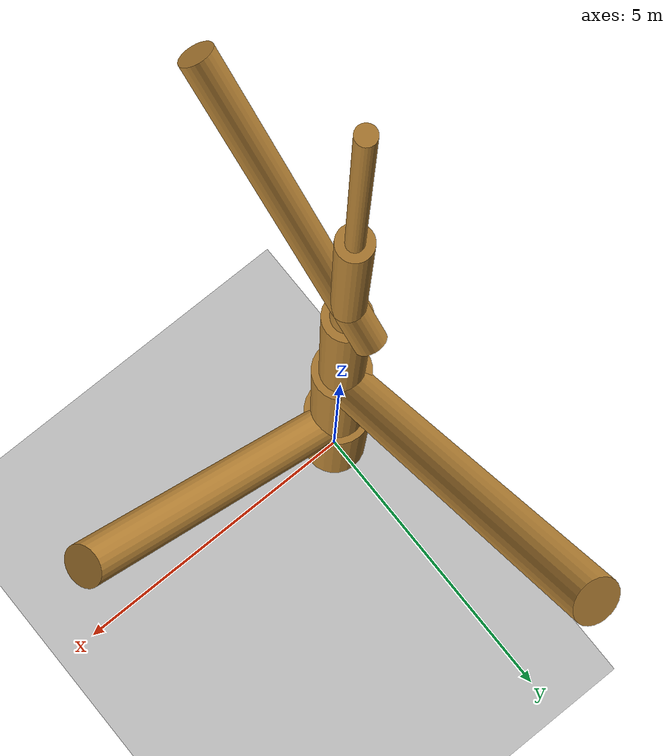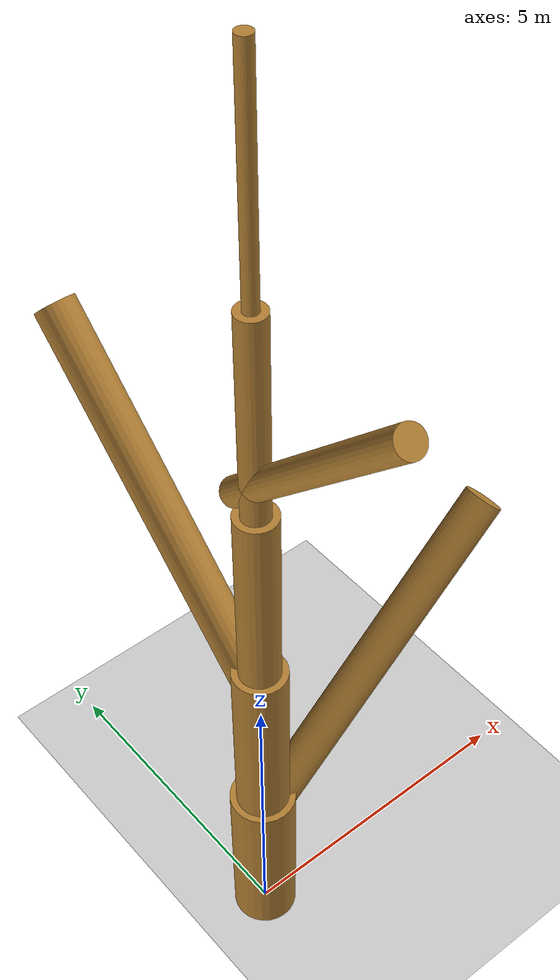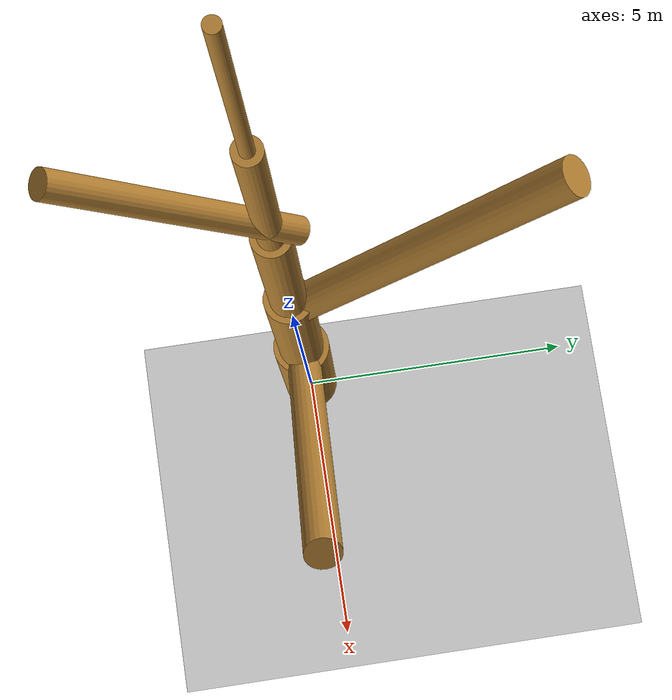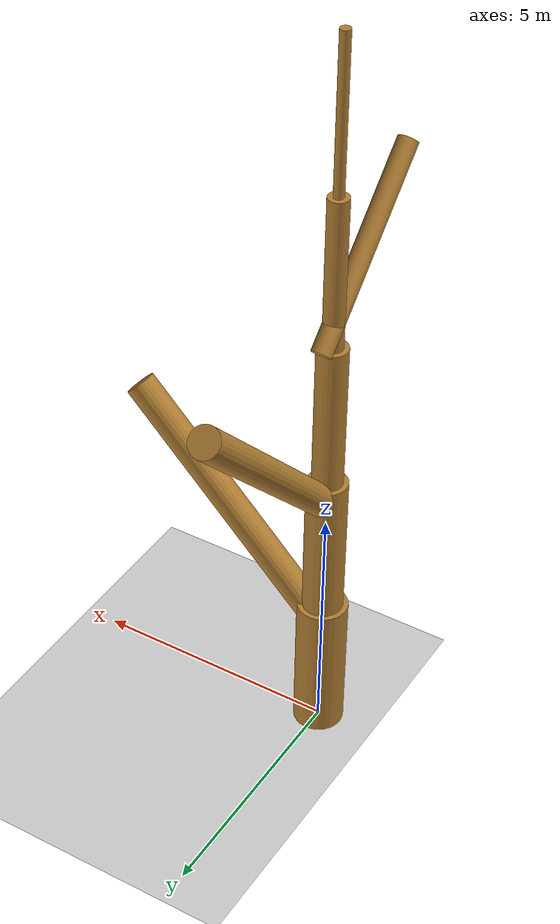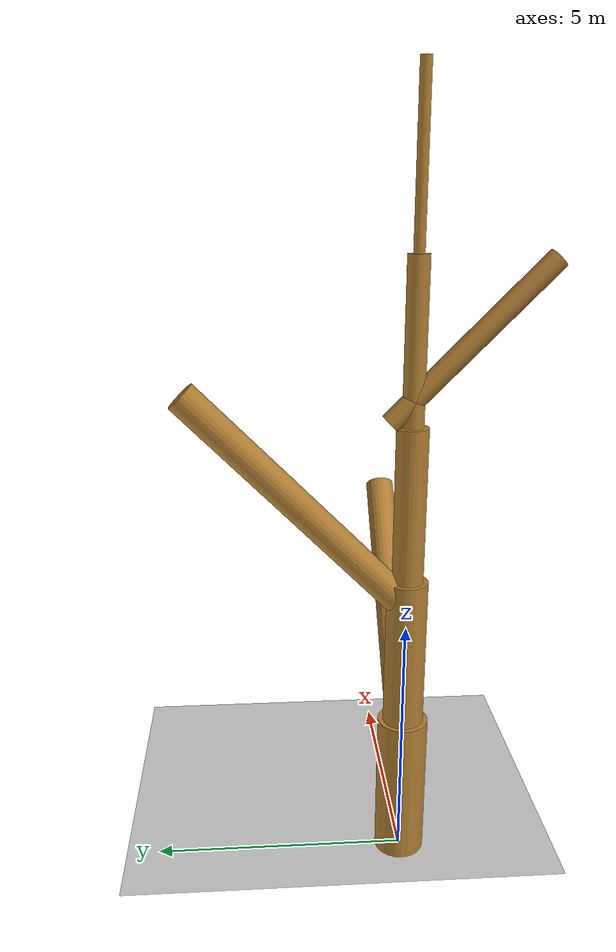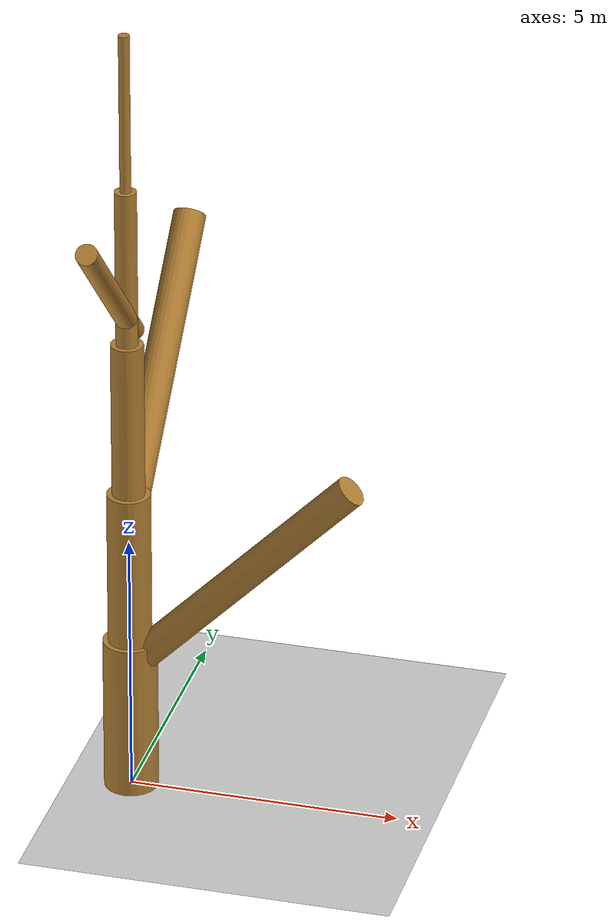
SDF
<sdf version="1.6">
 <world name="default">
  <include><uri>model://testTree</uri><pose>0 0 1.5 0 0 0</pose><static>true</static></include>
  <light name="sun" type="directional">
   <pose>0 0 10 0 -0 0</pose>
   <diffuse>0.8 0.8 0.8 1</diffuse>
   <specular>0.2 0.2 0.2 1</specular>
   <attenuation>
    <range>1000</range>
    <constant>0.9</constant>
    <linear>0.01</linear>
    <quadratic>0.001</quadratic>
   </attenuation>
   <direction>-0.5 0.1 -0.9</direction>
  </light>
  <model name="ground_plane">
   <static>1</static>
   <link name="link">
    <collision name="collision">
     <geometry><plane><normal>0 0 1</normal><size>100 100</size></plane></geometry>
     <surface><friction><ode><mu>100</mu><mu2>50</mu2></ode></friction></surface>
    </collision>
    <visual name="visual">
     <cast_shadows>0</cast_shadows>
     <geometry><plane><normal>0 0 1</normal><size>100 100</size></plane></geometry>
     <material>
      <script><uri>file://media/materials/scripts/gazebo.material</uri><name>Gazebo/Grey</name></script>
     </material>
    </visual>
   </link>
  </model>
  <gravity>0 0 -9.8</gravity>
  <magnetic_field>6e-06 2.3e-05 -4.2e-05</magnetic_field>
  <atmosphere type="adiabatic"/>
  <physics name="default_physics" default="0" type="ode">
   <max_step_size>0.001</max_step_size>
   <real_time_factor>1</real_time_factor>
   <real_time_update_rate>1000</real_time_update_rate>
  </physics>
  <scene><ambient>0.4 0.4 0.4 1</ambient><background>0.7 0.7 0.7 1</background><shadows>1</shadows></scene>
  <spherical_coordinates>
   <surface_model>EARTH_WGS84</surface_model>
   <latitude_deg>0</latitude_deg>
   <longitude_deg>0</longitude_deg>
   <elevation>0</elevation>
   <heading_deg>0</heading_deg>
  </spherical_coordinates>
 </world>
</sdf>

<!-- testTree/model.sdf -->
<sdf version='1.6'>
  <model name='testTree'>

    <link name='link_0'>
      <pose frame=''>0 0 0 0 0 0</pose>
      <visual name='visual'>
        <pose frame=''>0 0 0 0 0 0</pose>
        <geometry>
          <cylinder>
            <radius>0.5</radius>
            <length>3</length>
          </cylinder>
        </geometry>
        <material>
          <lighting>1</lighting>
          <script>
            <uri>file://media/materials/scripts/gazebo.material</uri>
            <name>Gazebo/Grey</name>
          </script>
          <shader type='pixel'/>
          <ambient>0.7 0.5 0.2 1</ambient>
          <diffuse>0.7 0.7 0.7 1</diffuse>
          <specular>0.01 0.01 0.01 1</specular>
          <emissive>0.1 0.1 0.1 1</emissive>
        </material>
        <transparency>0</transparency>
        <cast_shadows>1</cast_shadows>
      </visual>
    </link>

    <link name='link_1'>
      <pose frame=''>0 0 3 0 0 0</pose>
      <visual name='visual'>
        <pose frame=''>0 0 0 0 0 0</pose>
        <geometry>
          <cylinder>
            <radius>0.4</radius>
            <length>3</length>
          </cylinder>
        </geometry>
        <material>
          <lighting>1</lighting>
          <script>
            <uri>file://media/materials/scripts/gazebo.material</uri>
            <name>Gazebo/Grey</name>
          </script>
          <shader type='pixel'/>
          <ambient>0.7 0.5 0.2 1</ambient>
          <diffuse>0.7 0.7 0.7 1</diffuse>
          <specular>0.01 0.01 0.01 1</specular>
          <emissive>0.1 0.1 0.1 1</emissive>
        </material>
        <transparency>0</transparency>
        <cast_shadows>1</cast_shadows>
      </visual>
    </link>

    <link name='link_2'>
      <pose frame=''>0 0 6 0 0 0</pose>
      <visual name='visual'>
        <pose frame=''>0 0 0 0 0 0</pose>
        <geometry>
          <cylinder>
            <radius>0.3</radius>
            <length>3</length>
          </cylinder>
        </geometry>
        <material>
          <lighting>1</lighting>
          <script>
            <uri>file://media/materials/scripts/gazebo.material</uri>
            <name>Gazebo/Grey</name>
          </script>
          <shader type='pixel'/>
          <ambient>0.7 0.5 0.2 1</ambient>
          <diffuse>0.7 0.7 0.7 1</diffuse>
          <specular>0.01 0.01 0.01 1</specular>
          <emissive>0.1 0.1 0.1 1</emissive>
        </material>
        <transparency>0</transparency>
        <cast_shadows>1</cast_shadows>
      </visual>
    </link>

    <link name='link_3'>
      <pose frame=''>0 0 9 0 0 0</pose>
      <visual name='visual'>
        <pose frame=''>0 0 0 0 0 0</pose>
        <geometry>
          <cylinder>
            <radius>0.2</radius>
            <length>3</length>
          </cylinder>
        </geometry>
        <material>
          <lighting>1</lighting>
          <script>
            <uri>file://media/materials/scripts/gazebo.material</uri>
            <name>Gazebo/Grey</name>
          </script>
          <shader type='pixel'/>
          <ambient>0.7 0.5 0.2 1</ambient>
          <diffuse>0.7 0.7 0.7 1</diffuse>
          <specular>0.01 0.01 0.01 1</specular>
          <emissive>0.1 0.1 0.1 1</emissive>
        </material>
        <transparency>0</transparency>
        <cast_shadows>1</cast_shadows>
      </visual>
    </link>

    <link name='link_4'>
      <pose frame=''>0 0 12 0 0 0</pose>
      <visual name='visual'>
        <pose frame=''>0 0 0 0 0 0</pose>
        <geometry>
          <cylinder>
            <radius>0.1</radius>
            <length>3</length>
          </cylinder>
        </geometry>
        <material>
          <lighting>1</lighting>
          <script>
            <uri>file://media/materials/scripts/gazebo.material</uri>
            <name>Gazebo/Grey</name>
          </script>
          <shader type='pixel'/>
          <ambient>0.7 0.5 0.2 1</ambient>
          <diffuse>0.7 0.7 0.7 1</diffuse>
          <specular>0.01 0.01 0.01 1</specular>
          <emissive>0.1 0.1 0.1 1</emissive>
        </material>
        <transparency>0</transparency>
        <cast_shadows>1</cast_shadows>
      </visual>
    </link>

    <link name='link_5'>
      <pose frame=''>0 -1 9 0.78 0 0</pose>
      <visual name='visual'>
        <pose frame=''>0 0 0 0 0 0</pose>
        <geometry>
          <cylinder>
            <radius>0.2</radius>
            <length>4</length>
          </cylinder>
        </geometry>
        <material>
          <lighting>1</lighting>
          <script>
            <uri>file://media/materials/scripts/gazebo.material</uri>
            <name>Gazebo/Grey</name>
          </script>
          <shader type='pixel'/>
          <ambient>0.7 0.5 0.2 1</ambient>
          <diffuse>0.7 0.7 0.7 1</diffuse>
          <specular>0.01 0.01 0.01 1</specular>
          <emissive>0.1 0.1 0.1 1</emissive>
        </material>
        <transparency>0</transparency>
        <cast_shadows>1</cast_shadows>
      </visual>
    </link>

    <link name='link_6'>
      <pose frame=''>0 2 6 -0.78 0 0</pose>
      <visual name='visual'>
        <pose frame=''>0 0 0 0 0 0</pose>
        <geometry>
          <cylinder>
            <radius>0.3</radius>
            <length>6</length>
          </cylinder>
        </geometry>
        <material>
          <lighting>1</lighting>
          <script>
            <uri>file://media/materials/scripts/gazebo.material</uri>
            <name>Gazebo/Grey</name>
          </script>
          <shader type='pixel'/>
          <ambient>0.7 0.5 0.2 1</ambient>
          <diffuse>0.7 0.7 0.7 1</diffuse>
          <specular>0.01 0.01 0.01 1</specular>
          <emissive>0.1 0.1 0.1 1</emissive>
        </material>
        <transparency>0</transparency>
        <cast_shadows>1</cast_shadows>
      </visual>
    </link>

    <link name='link_7'>
      <pose frame=''>2 0 3 0 0.78 0</pose>
      <visual name='visual'>
        <pose frame=''>0 0 0 0 0 0</pose>
        <geometry>
          <cylinder>
            <radius>0.3</radius>
            <length>6</length>
          </cylinder>
        </geometry>
        <material>
          <lighting>1</lighting>
          <script>
            <uri>file://media/materials/scripts/gazebo.material</uri>
            <name>Gazebo/Grey</name>
          </script>
          <shader type='pixel'/>
          <ambient>0.7 0.5 0.2 1</ambient>
          <diffuse>0.7 0.7 0.7 1</diffuse>
          <specular>0.01 0.01 0.01 1</specular>
          <emissive>0.1 0.1 0.1 1</emissive>
        </material>
        <transparency>0</transparency>
        <cast_shadows>1</cast_shadows>
      </visual>
    </link>

    <joint name='link_0_JOINT_0' type='fixed'>
      <parent>link_0</parent>
      <child>link_1</child>
      <pose frame=''>0 0 0 0 0 0</pose>
    </joint>

    <joint name='link_1_JOINT_0' type='fixed'>
      <parent>link_1</parent>
      <child>link_2</child>
      <pose frame=''>0 0 0 0 0 0</pose>
    </joint>

    <joint name='link_2_JOINT_0' type='fixed'>
      <parent>link_2</parent>
      <child>link_3</child>
      <pose frame=''>0 0 0 0 0 0</pose>
    </joint>

    <joint name='link_3_JOINT_0' type='fixed'>
      <parent>link_3</parent>
      <child>link_4</child>
      <pose frame=''>0 0 0 0 0 0</pose>
    </joint>
    <joint name='link_3_JOINT_1' type='fixed'>
      <parent>link_3</parent>
      <child>link_5</child>
      <pose frame=''>0 0 0 0 0 0</pose>
    </joint>
    <joint name='link_3_JOINT_2' type='fixed'>
      <parent>link_3</parent>
      <child>link_5</child>
      <pose frame=''>0 0 0 0 0 0</pose>
    </joint>

    <static>0</static>
    <allow_auto_disable>1</allow_auto_disable>
  </model>
</sdf>
